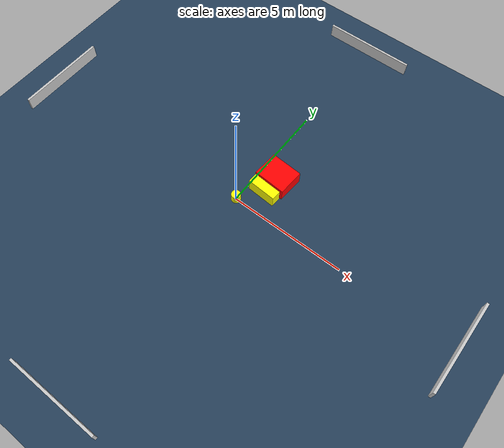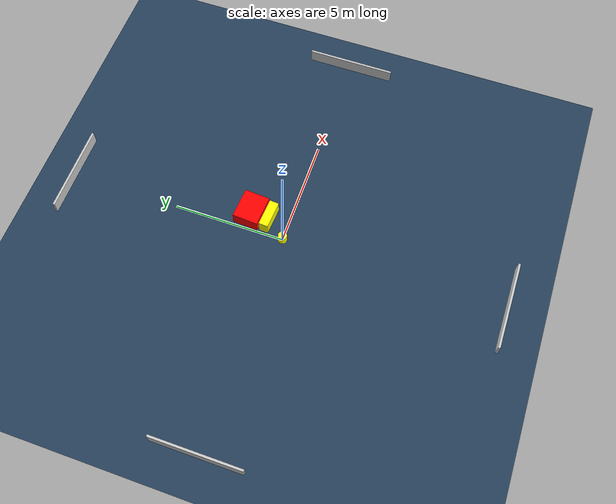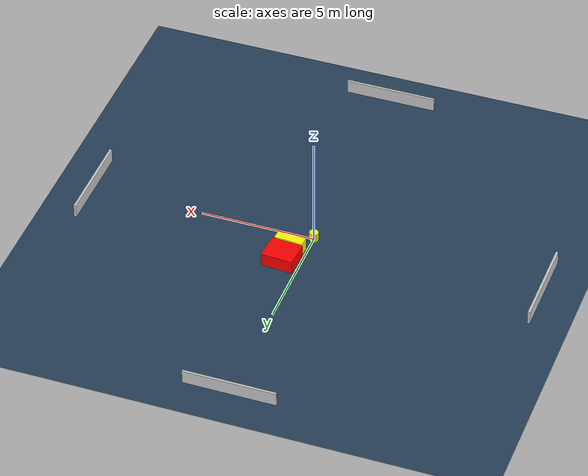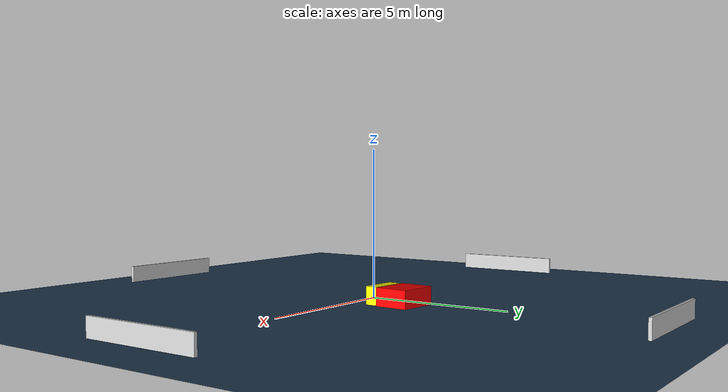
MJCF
<?xml version="1.0" ?>
<mujoco model="generated_environment">
  <option timestep="0.01" integrator="RK4" cone="elliptic"/>
  <default>
    <geom density="1"/>
  </default>
  <asset>
    <texture builtin="gradient" height="3072" name="skybox" rgb1="0.3 0.5 0.7" rgb2="0 0 0" type="skybox" width="512"/>
    <texture builtin="checker" height="300" name="groundplane" rgb1="0.2 0.3 0.4" rgb2="0.1 0.2 0.3" type="2d" width="300"/>
    <material name="groundplane" reflectance="0.2" texrepeat="5 5" texture="groundplane"/>
  </asset>
  <worldbody>
    <light dir="0 0 -1" directional="true" pos="0 0 1.5"/>
    <geom condim="3" friction="0.5 0.005 0.001" material="groundplane" name="floor" pos="0 0 0" size="0 0 0.05" type="plane"/>
    <body name="walls">
      <geom name="wall_1" condim="4" pos="-10.0 0.0 0.3" rgba="0.800000011920929 0.800000011920929 0.800000011920929 1.0" size="0.05 2.0 0.3" type="box"/>
      <geom name="wall_2" condim="4" pos="10.0 0.0 0.3" rgba="0.800000011920929 0.800000011920929 0.800000011920929 1.0" size="0.05 2.0 0.3" type="box"/>
      <geom name="wall_3" condim="4" pos="0.0 -10.0 0.3" rgba="0.800000011920929 0.800000011920929 0.800000011920929 1.0" size="2.0 0.05 0.3" type="box"/>
      <geom name="wall_4" condim="4" pos="0.0 10.0 0.3" rgba="0.800000011920929 0.800000011920929 0.800000011920929 1.0" size="2.0 0.05 0.3" type="box"/>
    </body>
    <body name="robot">
      <joint name="joint_x" type="slide" pos="0 0 0" axis="1 0 0"/>
      <joint name="joint_y" type="slide" pos="0 0 0" axis="0 1 0"/>
      <geom name="robot" type="cylinder" pos="0.0 0.0 0.2" size="0.2 0.2 0.0" mass="5.0" friction="1.0 0.005 0.0001" condim="4" rgba="1.0 1.0 0.0 1.0"/>
    </body>
    <body name="obstacle_1_movable">
      <geom name="obstacle_1_movable" condim="4" pos="0.73956756047375 0.8970018043422419 0.3" euler="0 0 356.35183171195655" friction="0.0 0.005 0.001" rgba="1.0 1.0 0.0 1.0" size="0.6244944960849845 0.21076218034120767 0.3" type="box" mass="0.1"/>
      <joint type="free"/>
    </body>
    <body name="obstacle_2_static">
      <geom name="obstacle_2_static" condim="4" pos="0.7966616213832837 1.7434960756006408 0.3" euler="0 0 356.2980360424598" friction="0.0 0.005 0.001" rgba="1.0 0.0 0.0 1.0" size="0.695616514446318 0.5741976729833096 0.3" type="box"/>
    </body>
  </worldbody>
  <actuator>
    <motor name="actuator_x" joint="joint_x" gear="1" ctrlrange="-1 1"/>
    <motor name="actuator_y" joint="joint_y" gear="1" ctrlrange="-1 1"/>
  </actuator>
</mujoco>
